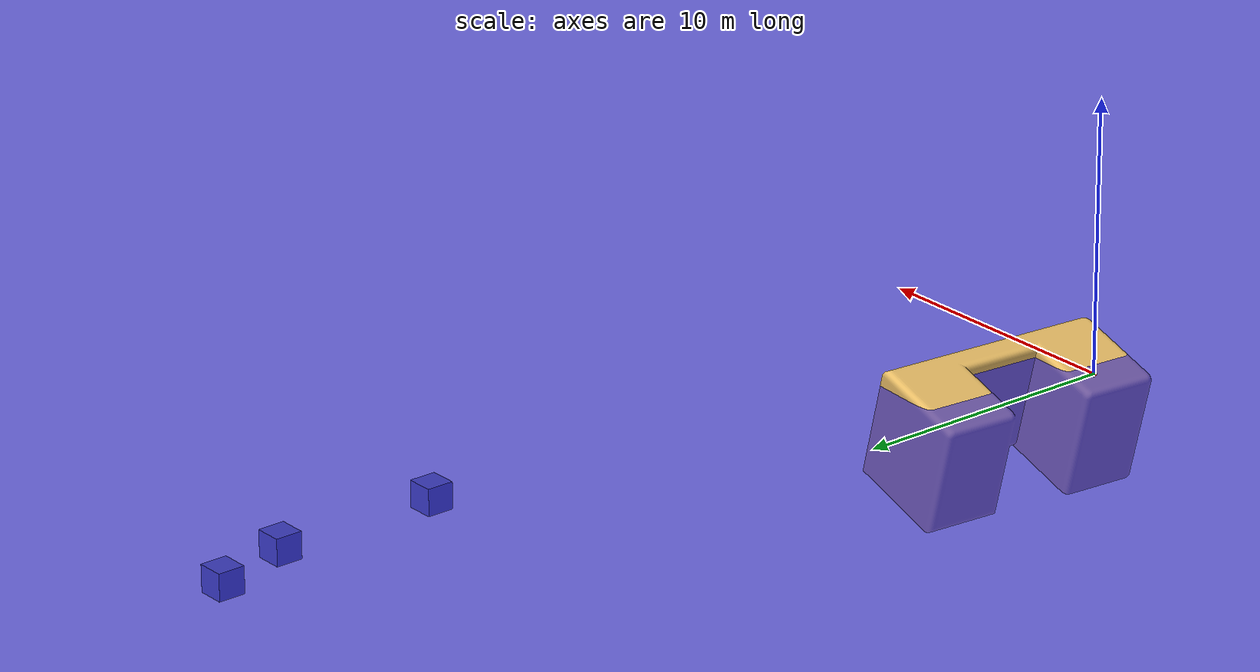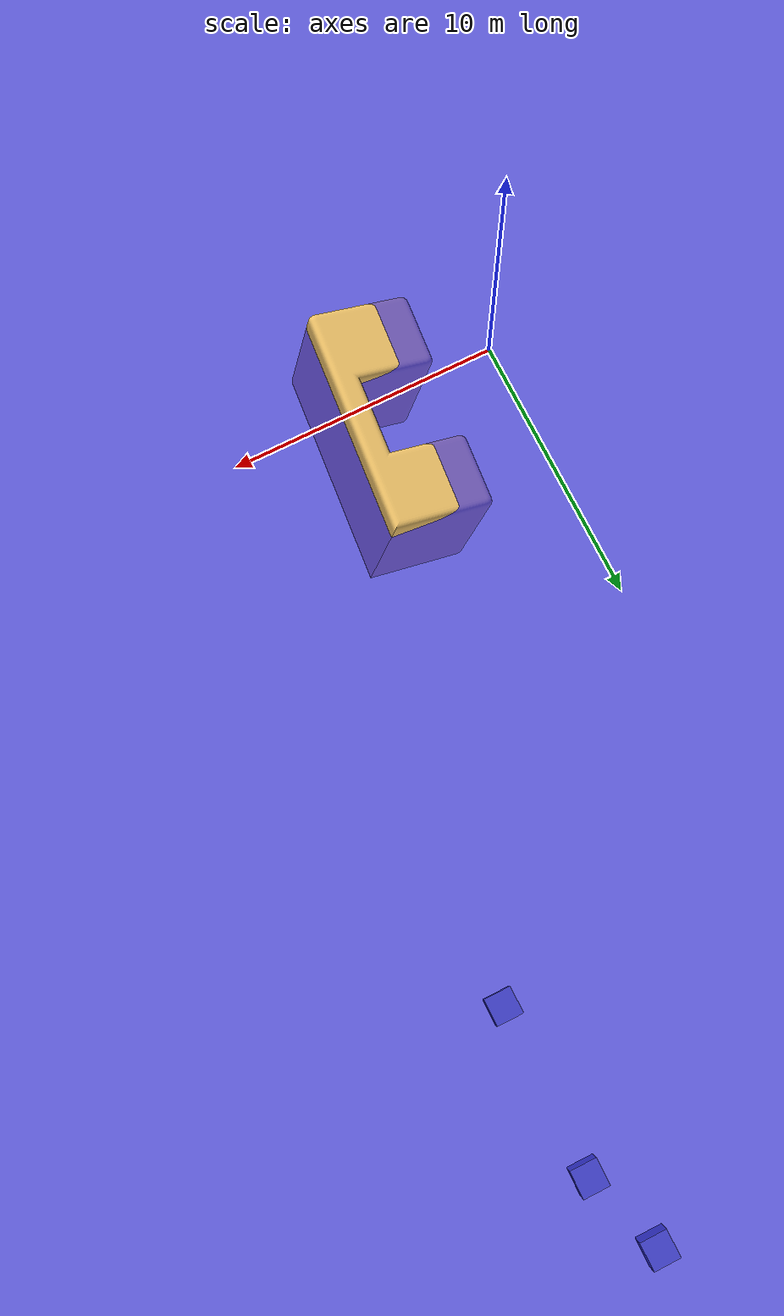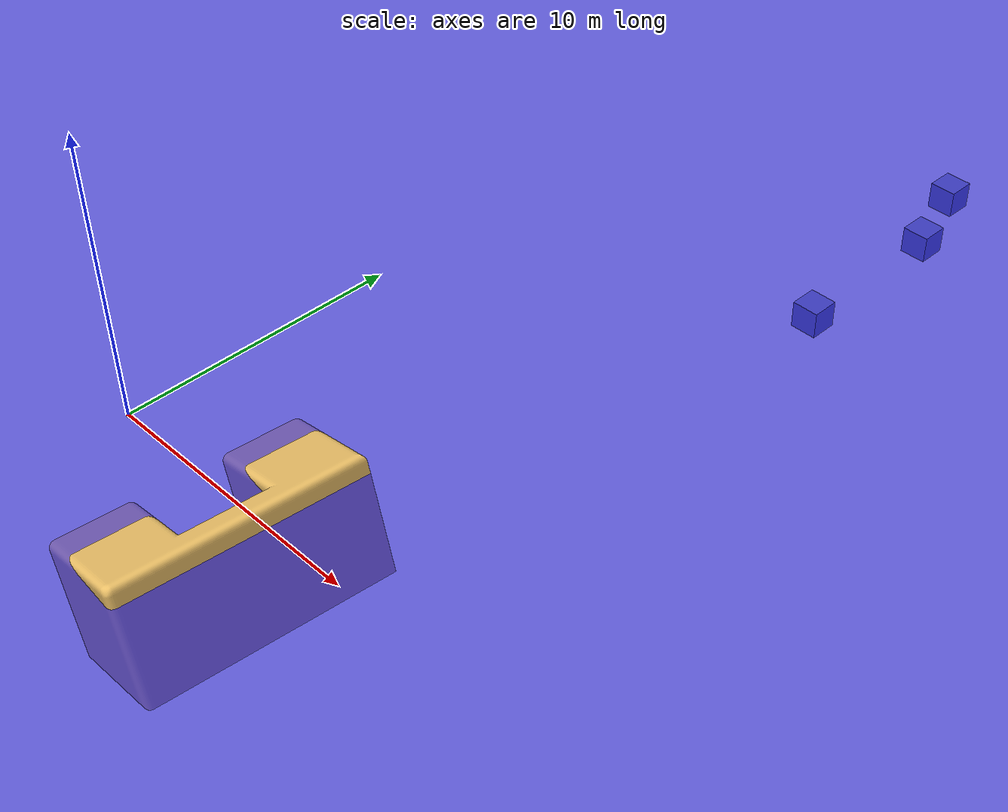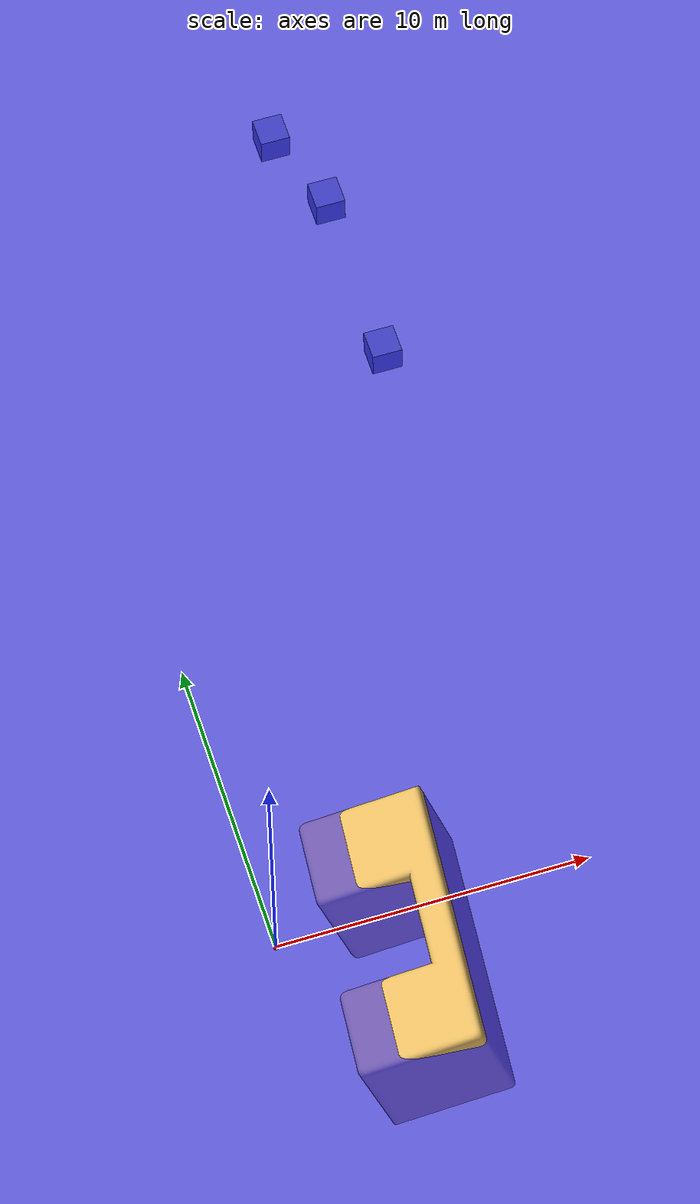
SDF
<sdf version="1.10">
 <world name="wamv_world">
  <physics name="1ms" type="ode">
   <max_step_size>0.001</max_step_size>
   <real_time_factor>1</real_time_factor>
   <real_time_update_rate>1000</real_time_update_rate>
  </physics>
  <plugin name="gz::sim::systems::Physics" filename="gz-sim-physics-system"/>
  <plugin name="gz::sim::systems::UserCommands" filename="gz-sim-user-commands-system"/>
  <plugin name="gz::sim::systems::Buoyancy" filename="gz-sim-buoyancy-system">
   <graded_buoyancy>
    <default_density>1000</default_density>
    <density_change><above_depth>0</above_depth><density>1</density></density_change>
   </graded_buoyancy>
   <enable>wamv</enable>
   <enable>my_lrauv_modified</enable>
   <enable>box_neutral_buoyancy</enable>
   <enable>box_neutral_buoyancy_1</enable>
   <enable>box_neutral_buoyancy_2</enable>
   <enable>Concave_Obstacle</enable>
  </plugin>
  <plugin name="gz::sim::systems::Imu" filename="gz-sim-imu-system"/>
  <plugin name="gz::sim::systems::Magnetometer" filename="gz-sim-magnetometer-system"/>
  <plugin name="gz::sim::systems::ForceTorque" filename="gz-sim-forcetorque-system"/>
  <plugin name="gz::sim::systems::SceneBroadcaster" filename="gz-sim-scene-broadcaster-system"/>
  <plugin name="gz::sim::systems::Contact" filename="gz-sim-contact-system"/>
  <plugin name="gz::sim::systems::NavSat" filename="gz-sim-navsat-system"/>
  <plugin name="gz::sim::systems::AirPressure" filename="gz-sim-air-pressure-system"/>
  <plugin name="gz::sim::systems::Sensors" filename="gz-sim-sensors-system">
   <render_engine>ogre2</render_engine>
  </plugin>
  <spherical_coordinates>
   <surface_model>EARTH_WGS84</surface_model>
   <world_frame_orientation>ENU</world_frame_orientation>
   <latitude_deg>42.35821841111111</latitude_deg>
   <longitude_deg>-71.047923555555499</longitude_deg>
   <elevation>0</elevation>
   <heading_deg>0</heading_deg>
  </spherical_coordinates>
  <atmosphere type="adiabatic"/>
  <scene>
   <ambient>0.400000006 0.400000006 0.400000006 1</ambient>
   <background>0.699999988 0.699999988 0.699999988 1</background>
   <shadows>true</shadows>
  </scene>
  <gravity>0 0 -9.8000000000000007</gravity>
  <magnetic_field>5.5644999999999998e-06 2.2875799999999999e-05 -4.2388400000000002e-05</magnetic_field>
  <model name="water_plane">
   <static>true</static>
   <link name="link">
    <visual name="water_plane">
     <geometry><box><size>1000 1000 100</size><normal>0 0 1</normal></box></geometry>
     <material><ambient>0 0 1 0.5</ambient><diffuse>0 0 1 0.5</diffuse><specular>0 0 1 0.5</specular></material>
    </visual>
    <pose>0 0 -50 0 0 0</pose>
    <inertial>
     <mass>1</mass>
     <inertia><ixx>1</ixx><ixy>0</ixy><ixz>0</ixz><iyy>1</iyy><iyz>0</iyz><izz>1</izz></inertia>
    </inertial>
   </link>
   <pose>0 0 -1.2572178840637207 0 0 0.073464900812977213</pose>
  </model>
  <model name="ground_plane">
   <static>true</static>
   <link name="link">
    <collision name="collision">
     <geometry><plane><normal>0 0 1</normal><size>1000 1000</size></plane></geometry>
     <surface><friction><ode><mu>100</mu><mu2>50</mu2></ode></friction></surface>
    </collision>
    <visual name="visual">
     <cast_shadows>false</cast_shadows>
     <geometry><plane><normal>0 0 1</normal><size>100 100</size></plane></geometry>
     <material>
      <ambient>0.300000012 0.300000012 0.300000012 1</ambient>
      <diffuse>0.699999988 0.699999988 0.699999988 1</diffuse>
      <specular>0.00999999978 0.00999999978 0.00999999978 1</specular>
     </material>
    </visual>
    <inertial>
     <mass>1</mass>
     <inertia><ixx>1</ixx><ixy>0</ixy><ixz>0</ixz><iyy>1</iyy><iyz>0</iyz><izz>1</izz></inertia>
    </inertial>
   </link>
   <pose>0 0 -100 0 0 0</pose>
  </model>
  <model name="world_origin_marker">
   <static>true</static>
   <link name="marker_link">
    <visual name="visual">
     <geometry><sphere><radius>0.10000000000000001</radius></sphere></geometry>
     <material><ambient>1 0 0 1</ambient></material>
    </visual>
    <inertial>
     <mass>1</mass>
     <inertia><ixx>1</ixx><ixy>0</ixy><ixz>0</ixz><iyy>1</iyy><iyz>0</iyz><izz>1</izz></inertia>
    </inertial>
   </link>
   <pose>0 0 0 0 0 -0.16809199999999982</pose>
  </model>
  <model name="box_neutral_buoyancy">
   <pose>10 20.800000000000001 -2 0 0 0</pose>
   <link name="body">
    <inertial>
     <mass>1000</mass>
     <pose>0 0 0.10000000000000001 0 0 0</pose>
     <inertia>
      <ixx>86.289078218599656</ixx>
      <ixy>0</ixy>
      <ixz>0</ixz>
      <iyy>86.289078218599656</iyy>
      <iyz>0</iyz>
      <izz>5.0265482457436708</izz>
     </inertia>
    </inertial>
    <visual name="body_visual">
     <geometry><box><size>1 1 1</size></box></geometry>
     <material>
      <ambient>0.5 0.5 0.5 1</ambient>
      <diffuse>0.5 0.5 0.5 1</diffuse>
      <specular>0.5 0.5 0.5 1</specular>
     </material>
    </visual>
    <collision name="body_collision">
     <geometry><box><size>1 1 1</size></box></geometry>
     <laser_retro>1</laser_retro>
    </collision>
   </link>
   <static>false</static>
  </model>
  <model name="box_neutral_buoyancy_1">
   <pose>10 27 -2 0 0 0</pose>
   <link name="body">
    <inertial>
     <mass>1000</mass>
     <pose>0 0 0.10000000000000001 0 0 0</pose>
     <inertia>
      <ixx>86.289078218599656</ixx>
      <ixy>0</ixy>
      <ixz>0</ixz>
      <iyy>86.289078218599656</iyy>
      <iyz>0</iyz>
      <izz>5.0265482457436708</izz>
     </inertia>
    </inertial>
    <visual name="body_visual">
     <geometry><box><size>1 1 1</size></box></geometry>
     <material>
      <ambient>0.5 0.5 0.5 1</ambient>
      <diffuse>0.5 0.5 0.5 1</diffuse>
      <specular>0.5 0.5 0.5 1</specular>
     </material>
    </visual>
    <collision name="body_collision">
     <geometry><box><size>1 1 1</size></box></geometry>
     <laser_retro>1</laser_retro>
    </collision>
   </link>
   <static>false</static>
  </model>
  <model name="box_neutral_buoyancy_2">
   <pose>9 30 -2 0 0 0</pose>
   <link name="body">
    <inertial>
     <mass>1000</mass>
     <pose>0 0 0.10000000000000001 0 0 0</pose>
     <inertia>
      <ixx>86.289078218599656</ixx>
      <ixy>0</ixy>
      <ixz>0</ixz>
      <iyy>86.289078218599656</iyy>
      <iyz>0</iyz>
      <izz>5.0265482457436708</izz>
     </inertia>
    </inertial>
    <visual name="body_visual">
     <geometry><box><size>1 1 1</size></box></geometry>
     <material>
      <ambient>0.5 0.5 0.5 1</ambient>
      <diffuse>0.5 0.5 0.5 1</diffuse>
      <specular>0.5 0.5 0.5 1</specular>
     </material>
    </visual>
    <collision name="body_collision">
     <geometry><box><size>1 1 1</size></box></geometry>
     <laser_retro>1</laser_retro>
    </collision>
   </link>
   <static>false</static>
  </model>
  <model name="Concave_Obstacle">
   <link name="base_link">
    <must_be_base_link>true</must_be_base_link>
    <pose>16 -8 -10 0 0 0</pose>
    <inertial>
     <mass>14785.6</mass>
     <inertia><ixx>1</ixx><ixy>0</ixy><ixz>0</ixz><iyy>1</iyy><iyz>0</iyz><izz>1</izz></inertia>
    </inertial>
    <collision name="base_link_collision">
     <geometry><box><size>2 3 2.4644516666666672</size></box></geometry>
     <surface><friction><ode><mu>1.05</mu><mu2>1.05</mu2></ode></friction></surface>
    </collision>
    <visual name="base_link_visual">
     <geometry>
      <mesh>
       <uri>file:////home/arash/ros2_ws/src/surface/models/concave_obstacle/meshes/Unnamed-concave_obstacle.dae</uri>
      </mesh>
      <material>
       <ambient>0.5 0.5 0.5 1</ambient>
       <diffuse>0.5 0.5 0.5 1</diffuse>
       <specular>0.5 0.5 0.5 1</specular>
      </material>
     </geometry>
    </visual>
    <inertia>
     <Ixx>0.593977313</Ixx>
     <Ixy>−0.017091614</Ixy>
     <Ixz>−0.02798984</Ixz>
     <Iyx>−0.017091614</Iyx>
     <Iyy>1.444791889</Iyy>
     <Iyz>−0.007921778</Iyz>
     <Izx>−0.02798984</Izx>
     <Izy>−0.007921778</Izy>
     <Izz>0.928181238</Izz>
    </inertia>
   </link>
   <pose>23.923698425292969 11.764399528503418 4.9132425339414034 0 0 -2.2698800192771671</pose>
   <static>false</static>
  </model>
  <light name="sun" type="directional">
   <pose>0 0 10000 0 0 0</pose>
   <cast_shadows>false</cast_shadows>
   <intensity>1</intensity>
   <direction>-0.5 0.10000000000000001 -0.90000000000000002</direction>
   <diffuse>0.800000012 0.800000012 0.800000012 1</diffuse>
   <specular>0.200000003 0.200000003 0.200000003 1</specular>
   <attenuation>
    <range>1000</range>
    <linear>0.0099999997764825821</linear>
    <constant>0.89999997615814209</constant>
    <quadratic>0.0010000000474974513</quadratic>
   </attenuation>
   <spot><inner_angle>0</inner_angle><outer_angle>0</outer_angle><falloff>0</falloff></spot>
  </light>
 </world>
</sdf>
